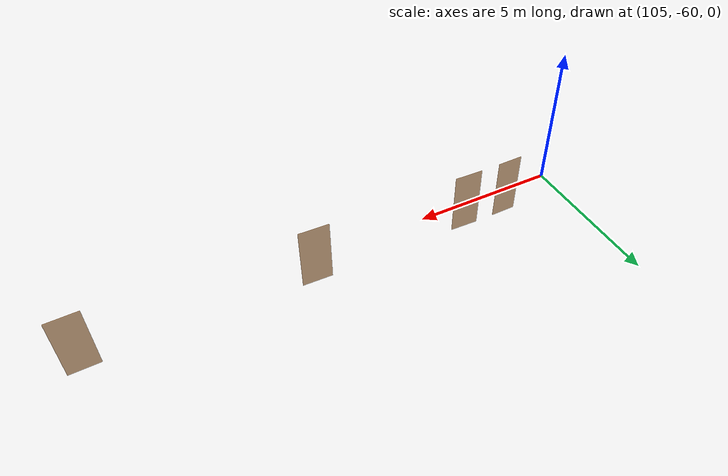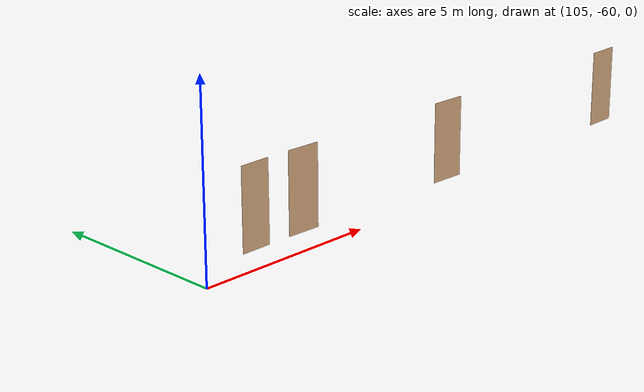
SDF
<sdf version="1.7">
 <world name="sim_world">
  <model name="puerta128">
   <pose>107.33289436593049 -59.10879800066474 0.0 0 0 0.015888025951123645</pose>
   <link name="right">
    <pose>0 0 1.11 0 0 0</pose>
    <visual name="right_visual">
     <geometry><box><size>0.8480301126455676 0.03 2.2</size></box></geometry>
     <material>
      <ambient>0.5 0.25 0 0.6</ambient>
      <diffuse>0.5 0.25 0 0.6</diffuse>
      <pbr><metal><metalness>0.0</metalness></metal></pbr>
     </material>
    </visual>
    <collision name="right_collision">
     <geometry><box><size>0.8480301126455676 0.03 2.2</size></box></geometry>
     <surface><contact><collide_bitmask>0x02</collide_bitmask></contact></surface>
    </collision>
    <inertial>
     <mass>50.0</mass>
     <inertia><ixx>20.17041666666667</ixx><iyy>23.16314613314023</iyy><izz>3.0002294664735585</izz></inertia>
    </inertial>
   </link>
   <joint name="right_joint" type="revolute">
    <parent>world</parent>
    <child>right</child>
    <axis><xyz>0 0 -1</xyz><limit><lower>0</lower><upper>1.57</upper></limit></axis>
    <pose>0.4290150563227838 0 0 0 0 0</pose>
   </joint>
   <plugin name="register_component" filename="libregister_component.so">
    <component name="Door">
     <v_max_door>0.5</v_max_door>
     <a_max_door>0.3</a_max_door>
     <a_nom_door>0.15</a_nom_door>
     <dx_min_door>0.01</dx_min_door>
     <f_max_door>500.0</f_max_door>
     <ros_interface>true</ros_interface>
     <door name="puerta128" type="SwingDoor" left_joint_name="empty_joint" right_joint_name="right_joint"/>
    </component>
   </plugin>
  </model>
  <model name="puerta131">
   <pose>108.9057931075105 -59.115592879471876 0.0 0 0 3.1130453752101825</pose>
   <link name="right">
    <pose>0 0 1.11 0 0 0</pose>
    <visual name="right_visual">
     <geometry><box><size>0.9436911410675745 0.03 2.2</size></box></geometry>
     <material>
      <ambient>0.5 0.25 0 0.6</ambient>
      <diffuse>0.5 0.25 0 0.6</diffuse>
      <pbr><metal><metalness>0.0</metalness></metal></pbr>
     </material>
    </visual>
    <collision name="right_collision">
     <geometry><box><size>0.9436911410675745 0.03 2.2</size></box></geometry>
     <surface><contact><collide_bitmask>0x02</collide_bitmask></contact></surface>
    </collision>
    <inertial>
     <mass>50.0</mass>
     <inertia><ixx>20.17041666666667</ixx><iyy>23.877304040539258</iyy><izz>3.7143873738725866</izz></inertia>
    </inertial>
   </link>
   <joint name="right_joint" type="revolute">
    <parent>world</parent>
    <child>right</child>
    <axis><xyz>0 0 1</xyz><limit><lower>0</lower><upper>1.57</upper></limit></axis>
    <pose>0.47684557053378723 0 0 0 0 0</pose>
   </joint>
   <plugin name="register_component" filename="libregister_component.so">
    <component name="Door">
     <v_max_door>0.5</v_max_door>
     <a_max_door>0.3</a_max_door>
     <a_nom_door>0.15</a_nom_door>
     <dx_min_door>0.01</dx_min_door>
     <f_max_door>500.0</f_max_door>
     <ros_interface>true</ros_interface>
     <door name="puerta131" type="SwingDoor" left_joint_name="empty_joint" right_joint_name="right_joint"/>
    </component>
   </plugin>
  </model>
  <model name="puerta132">
   <pose>114.23726959470542 -59.14283550502988 0.0 0 0 -0.027418216184547248</pose>
   <link name="right">
    <pose>0 0 1.11 0 0 0</pose>
    <visual name="right_visual">
     <geometry><box><size>0.9844876938478686 0.03 2.2</size></box></geometry>
     <material>
      <ambient>0.5 0.25 0 0.6</ambient>
      <diffuse>0.5 0.25 0 0.6</diffuse>
      <pbr><metal><metalness>0.0</metalness></metal></pbr>
     </material>
    </visual>
    <collision name="right_collision">
     <geometry><box><size>0.9844876938478686 0.03 2.2</size></box></geometry>
     <surface><contact><collide_bitmask>0x02</collide_bitmask></contact></surface>
    </collision>
    <inertial>
     <mass>50.0</mass>
     <inertia><ixx>20.17041666666667</ixx><iyy>24.205066747241233</iyy><izz>4.042150080574562</izz></inertia>
    </inertial>
   </link>
   <joint name="right_joint" type="revolute">
    <parent>world</parent>
    <child>right</child>
    <axis><xyz>0 0 -1</xyz><limit><lower>0</lower><upper>1.57</upper></limit></axis>
    <pose>0.4972438469239343 0 0 0 0 0</pose>
   </joint>
   <plugin name="register_component" filename="libregister_component.so">
    <component name="Door">
     <v_max_door>0.5</v_max_door>
     <a_max_door>0.3</a_max_door>
     <a_nom_door>0.15</a_nom_door>
     <dx_min_door>0.01</dx_min_door>
     <f_max_door>500.0</f_max_door>
     <ros_interface>true</ros_interface>
     <door name="puerta132" type="SwingDoor" left_joint_name="empty_joint" right_joint_name="right_joint"/>
    </component>
   </plugin>
  </model>
  <model name="puerta136">
   <pose>121.22880018848949 -59.15711947626839 0.0 0 0 0.027215304292691322</pose>
   <link name="right">
    <pose>0 0 1.11 0 0 0</pose>
    <visual name="right_visual">
     <geometry><box><size>0.940877831977068 0.03 2.2</size></box></geometry>
     <material>
      <ambient>0.5 0.25 0 0.6</ambient>
      <diffuse>0.5 0.25 0 0.6</diffuse>
      <pbr><metal><metalness>0.0</metalness></metal></pbr>
     </material>
    </visual>
    <collision name="right_collision">
     <geometry><box><size>0.940877831977068 0.03 2.2</size></box></geometry>
     <surface><contact><collide_bitmask>0x02</collide_bitmask></contact></surface>
    </collision>
    <inertial>
     <mass>50.0</mass>
     <inertia><ixx>20.17041666666667</ixx><iyy>23.855212894607785</iyy><izz>3.692296227941116</izz></inertia>
    </inertial>
   </link>
   <joint name="right_joint" type="revolute">
    <parent>world</parent>
    <child>right</child>
    <axis><xyz>0 0 -1</xyz><limit><lower>0</lower><upper>1.57</upper></limit></axis>
    <pose>0.475438915988534 0 0 0 0 0</pose>
   </joint>
   <plugin name="register_component" filename="libregister_component.so">
    <component name="Door">
     <v_max_door>0.5</v_max_door>
     <a_max_door>0.3</a_max_door>
     <a_nom_door>0.15</a_nom_door>
     <dx_min_door>0.01</dx_min_door>
     <f_max_door>500.0</f_max_door>
     <ros_interface>true</ros_interface>
     <door name="puerta136" type="SwingDoor" left_joint_name="empty_joint" right_joint_name="right_joint"/>
    </component>
   </plugin>
  </model>
 </world>
</sdf>
